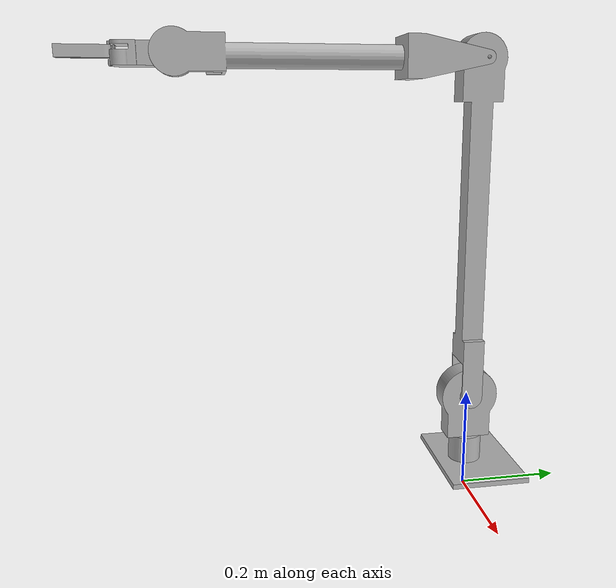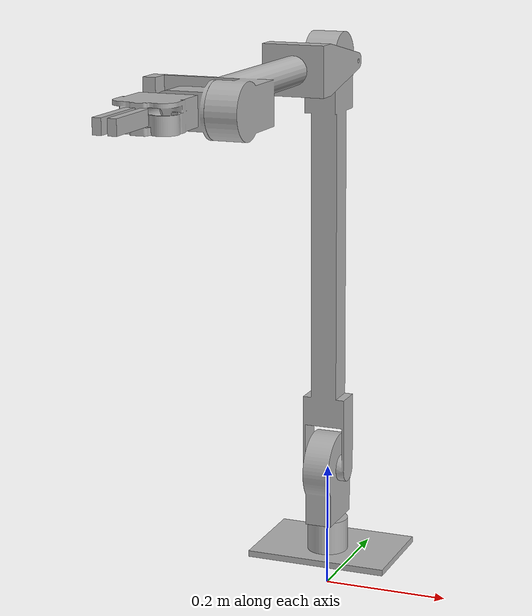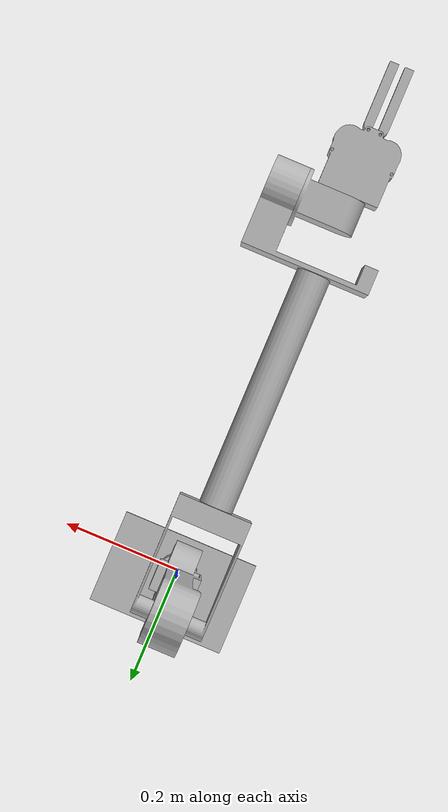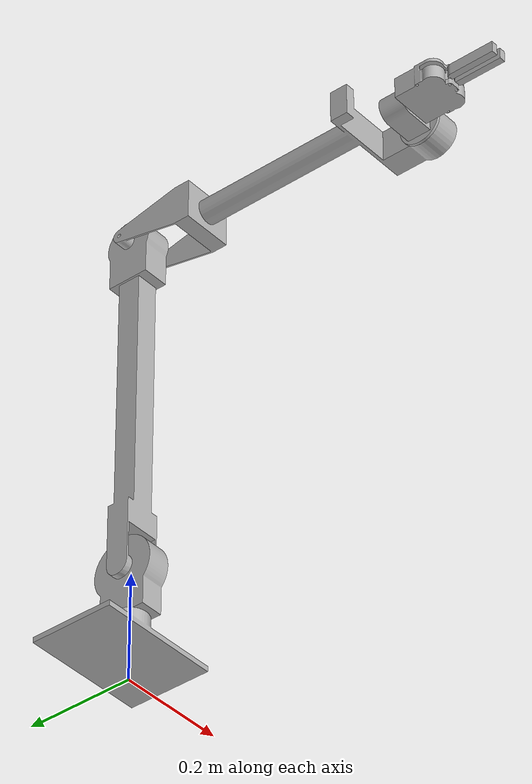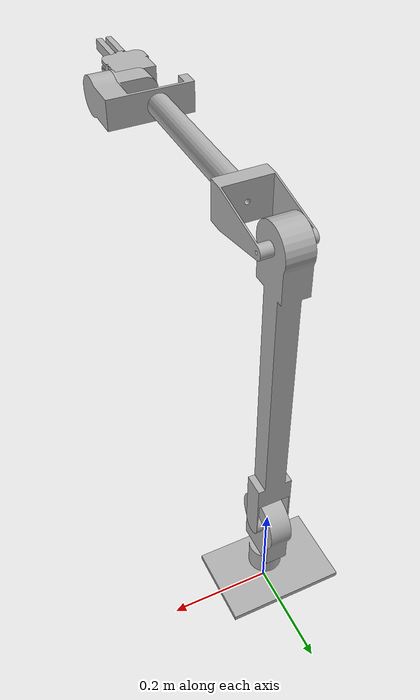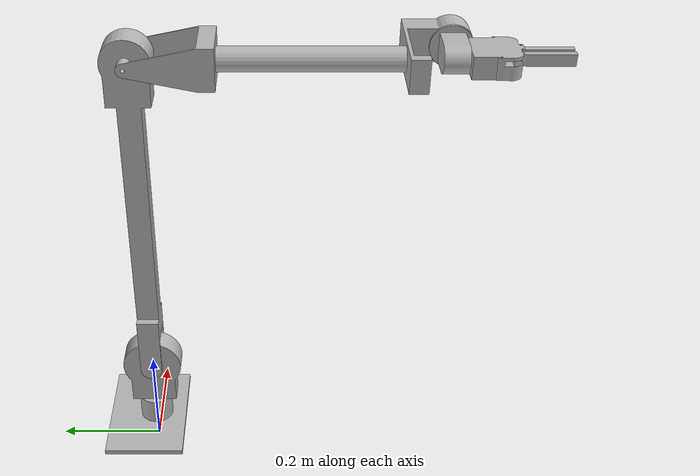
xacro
<?xml version="1.0" ?>
<robot name="assembly" xmlns:xacro="http://www.ros.org/wiki/xacro">

<xacro:include filename="$(find arm_22_gazebo_pos)/urdf/materials.xacro" />
<xacro:include filename="$(find arm_22_gazebo_pos)/urdf/assembly.trans" />
<xacro:include filename="$(find arm_22_gazebo_pos)/urdf/assembly.gazebo" />

<link name="world"> </link>

<joint name="dummy_joint" type="fixed">
  <origin xyz="0 0 0.06" rpy="0 0 0"/>
  <parent link="world"/>
  <child link="base_link"/>
</joint>

<link name="base_link">
  <inertial>
    <origin rpy="0 0 0" xyz="2.111478230178841e-13 0.011682408428370204 0.005554773279956959"/>
    <mass value="4.192131083267752"/>
    <inertia ixx="0.007549" ixy="0.0" ixz="0.0" iyy="0.013998" iyz="0.000517" izz="0.018961"/>
  </inertial>
  <visual>
    <origin rpy="0 0 0" xyz="0 0 0"/>
    <geometry>
      <mesh filename="package://arm_22_gazebo_pos/meshes/base_link.stl" scale="0.001 0.001 0.001"/>
    </geometry>
    <material name="silver"/>
  </visual>
  <collision>
    <origin rpy="0 0 0" xyz="0 0 0"/>
    <geometry>
      <mesh filename="package://arm_22_gazebo_pos/meshes/base_link.stl" scale="0.001 0.001 0.001"/>
    </geometry>
  </collision>
</link>

<link name="1_2_link_1">
  <inertial>
    <origin rpy="0 0 0" xyz="-4.440892098500626e-18 1.4354722485038024e-15 0.07105772806777622"/>
    <mass value="4.533031384288756"/>
    <inertia ixx="0.01043" ixy="-0.0" ixz="-0.0" iyy="0.007523" iyz="0.0" izz="0.004306"/>
  </inertial>
  <visual>
    <origin rpy="0 0 0" xyz="-0.0 -0.0 -0.0535"/>
    <geometry>
      <mesh filename="package://arm_22_gazebo_pos/meshes/1_2_link_1.stl" scale="0.001 0.001 0.001"/>
    </geometry>
    <material name="silver"/>
  </visual>
  <collision>
    <origin rpy="0 0 0" xyz="-0.0 -0.0 -0.0535"/>
    <geometry>
      <mesh filename="package://arm_22_gazebo_pos/meshes/1_2_link_1.stl" scale="0.001 0.001 0.001"/>
    </geometry>
  </collision>
</link>

<link name="2_3_link_1">
  <inertial>
    <origin rpy="0 0 0" xyz="-0.021499999999999762 1.9407189213085804e-17 0.40425517026841495"/>
    <mass value="11.422793723409663"/>
    <inertia ixx="0.493811" ixy="-0.0" ixz="-0.0" iyy="0.49327" iyz="-0.0" izz="0.005454"/>
  </inertial>
  <visual>
    <origin rpy="0 0 0" xyz="-0.0215 -0.0 -0.141"/>
    <geometry>
      <mesh filename="package://arm_22_gazebo_pos/meshes/2_3_link_1.stl" scale="0.001 0.001 0.001"/>
    </geometry>
    <material name="silver"/>
  </visual>
  <collision>
    <origin rpy="0 0 0" xyz="-0.0215 -0.0 -0.141"/>
    <geometry>
      <mesh filename="package://arm_22_gazebo_pos/meshes/2_3_link_1.stl" scale="0.001 0.001 0.001"/>
    </geometry>
  </collision>
</link>

<link name="3_4_link_1">
  <inertial>
    <origin rpy="0 0 0" xyz="0.025000000000004786 -0.11600699772151865 1.1102230246251565e-16"/>
    <mass value="2.1095820437502777"/>
    <inertia ixx="0.004579" ixy="0.0" ixz="0.0" iyy="0.003013" iyz="0.0" izz="0.005799"/>
  </inertial>
  <visual>
    <origin rpy="0 0 0" xyz="0.025 -0.0 -0.7965"/>
    <geometry>
      <mesh filename="package://arm_22_gazebo_pos/meshes/3_4_link_1.stl" scale="0.001 0.001 0.001"/>
    </geometry>
    <material name="silver"/>
  </visual>
  <collision>
    <origin rpy="0 0 0" xyz="0.025 -0.0 -0.7965"/>
    <geometry>
      <mesh filename="package://arm_22_gazebo_pos/meshes/3_4_link_1.stl" scale="0.001 0.001 0.001"/>
    </geometry>
  </collision>
</link>

<link name="4_5_link_1">
  <inertial>
    <origin rpy="0 0 0" xyz="0.02631095454187837 -0.25285048089107715 1.1102230246251565e-16"/>
    <mass value="6.936333570954899"/>
    <inertia ixx="0.111412" ixy="0.023035" ixz="0.0" iyy="0.014343" iyz="0.0" izz="0.122701"/>
  </inertial>
  <visual>
    <origin rpy="0 0 0" xyz="-0.0 0.14925 -0.7965"/>
    <geometry>
      <mesh filename="package://arm_22_gazebo_pos/meshes/4_5_link_1.stl" scale="0.001 0.001 0.001"/>
    </geometry>
    <material name="silver"/>
  </visual>
  <collision>
    <origin rpy="0 0 0" xyz="-0.0 0.14925 -0.7965"/>
    <geometry>
      <mesh filename="package://arm_22_gazebo_pos/meshes/4_5_link_1.stl" scale="0.001 0.001 0.001"/>
    </geometry>
  </collision>
</link>

<link name="5_6_link_1">
  <inertial>
    <origin rpy="0 0 0" xyz="-0.03519954944823235 0.0 1.1102230246251565e-16"/>
    <mass value="1.380651703874357"/>
    <inertia ixx="0.000555" ixy="0.0" ixz="0.0" iyy="0.00102" iyz="0.0" izz="0.000981"/>
  </inertial>
  <visual>
    <origin rpy="0 0 0" xyz="-0.055 0.54725 -0.7965"/>
    <geometry>
      <mesh filename="package://arm_22_gazebo_pos/meshes/5_6_link_1.stl" scale="0.001 0.001 0.001"/>
    </geometry>
    <material name="silver"/>
  </visual>
  <collision>
    <origin rpy="0 0 0" xyz="-0.055 0.54725 -0.7965"/>
    <geometry>
      <mesh filename="package://arm_22_gazebo_pos/meshes/5_6_link_1.stl" scale="0.001 0.001 0.001"/>
    </geometry>
  </collision>
</link>

<link name="gripper_link_1">
  <inertial>
    <origin rpy="0 0 0" xyz="-1.9022434799199985e-14 -0.03416319786748656 0.0010518735260454104"/>
    <mass value="0.17794522906388674"/>
    <inertia ixx="0.000124" ixy="-0.0" ixz="0.0" iyy="0.000145" iyz="-1e-06" izz="0.000206"/>
  </inertial>
  <visual>
    <origin rpy="0 0 0" xyz="-0.0 0.56925 -0.7965"/>
    <geometry>
      <mesh filename="package://arm_22_gazebo_pos/meshes/gripper_link_1.stl" scale="0.001 0.001 0.001"/>
    </geometry>
    <material name="silver"/>
  </visual>
  <collision>
    <origin rpy="0 0 0" xyz="-0.0 0.56925 -0.7965"/>
    <geometry>
      <mesh filename="package://arm_22_gazebo_pos/meshes/gripper_link_1.stl" scale="0.001 0.001 0.001"/>
    </geometry>
  </collision>
</link>

<link name="parmak_1_link_1">
  <inertial>
    <origin rpy="0 0 0" xyz="-0.001967084910946904 -0.04536035309441244 -0.010499999999999954"/>
    <mass value="0.17651437470268025"/>
    <inertia ixx="0.000124" ixy="-0.0" ixz="0.0" iyy="9e-06" iyz="0.0" izz="0.00012"/>
  </inertial>
  <visual>
    <origin rpy="0 0 0" xyz="0.008 0.65425 -0.8115"/>
    <geometry>
      <mesh filename="package://arm_22_gazebo_pos/meshes/parmak_1_link_1.stl" scale="0.001 0.001 0.001"/>
    </geometry>
    <material name="silver"/>
  </visual>
  <collision>
    <origin rpy="0 0 0" xyz="0.008 0.65425 -0.8115"/>
    <geometry>
      <mesh filename="package://arm_22_gazebo_pos/meshes/parmak_1_link_1.stl" scale="0.001 0.001 0.001"/>
    </geometry>
  </collision>
</link>

<link name="parmak_2_link_1">
  <inertial>
    <origin rpy="0 0 0" xyz="0.0019670849109472976 -0.045360353094412664 -0.010499999999999954"/>
    <mass value="0.17651437470268025"/>
    <inertia ixx="0.000124" ixy="0.0" ixz="0.0" iyy="9e-06" iyz="0.0" izz="0.00012"/>
  </inertial>
  <visual>
    <origin rpy="0 0 0" xyz="-0.008 0.65425 -0.8115"/>
    <geometry>
      <mesh filename="package://arm_22_gazebo_pos/meshes/parmak_2_link_1.stl" scale="0.001 0.001 0.001"/>
    </geometry>
    <material name="silver"/>
  </visual>
  <collision>
    <origin rpy="0 0 0" xyz="-0.008 0.65425 -0.8115"/>
    <geometry>
      <mesh filename="package://arm_22_gazebo_pos/meshes/parmak_2_link_1.stl" scale="0.001 0.001 0.001"/>
    </geometry>
  </collision>
</link>

<joint name="axis_1" type="continuous">
  <origin rpy="0 0 0" xyz="0.0 0.0 0.0535"/>
  <parent link="base_link"/>
  <child link="1_2_link_1"/>
  <axis xyz="0.0 0.0 1.0"/>
</joint>

<joint name="axis_2" type="continuous">
  <origin rpy="0 0 0" xyz="0.0215 0.0 0.0875"/>
  <parent link="1_2_link_1"/>
  <child link="2_3_link_1"/>
  <axis xyz="-1.0 0.0 0.0"/>
</joint>

<joint name="axis_3" type="continuous">
  <origin rpy="0 0 0" xyz="-0.0465 0.0 0.6555"/>
  <parent link="2_3_link_1"/>
  <child link="3_4_link_1"/>
  <axis xyz="-1.0 0.0 0.0"/>
</joint>

<joint name="axis_4" type="continuous">
  <origin rpy="0 0 0" xyz="0.025 -0.14925 0.0"/>
  <parent link="3_4_link_1"/>
  <child link="4_5_link_1"/>
  <axis xyz="-0.0 1.0 -0.0"/>
</joint>

<joint name="axis_5" type="continuous">
  <origin rpy="0 0 0" xyz="0.055 -0.398 0.0"/>
  <parent link="4_5_link_1"/>
  <child link="5_6_link_1"/>
  <axis xyz="-1.0 0.0 0.0"/>
</joint>

<joint name="axis_6" type="continuous">
  <origin rpy="0 0 0" xyz="-0.055 -0.022 0.0"/>
  <parent link="5_6_link_1"/>
  <child link="gripper_link_1"/>
  <axis xyz="-0.0 -1.0 0.0"/>
</joint>

<joint name="axis_parmak_1" type="revolute">
  <origin rpy="0 0 0" xyz="-0.008 -0.085 0.015"/>
  <parent link="gripper_link_1"/>
  <child link="parmak_1_link_1"/>
  <axis xyz="0.0 0.0 1.0"/>
  <limit
  lower="-0.5"
  upper="0.05"
  effort="200"
  velocity="20" />
</joint>

<joint name="axis_parmak_2" type="revolute">
  <origin rpy="0 0 0" xyz="0.008 -0.085 0.015"/>
  <parent link="gripper_link_1"/>
  <child link="parmak_2_link_1"/>
  <axis xyz="0.0 0.0 1.0"/>
  <limit
  lower="-0.05"
  upper="0.5"
  effort="200"
  velocity="20" />
</joint>

</robot>

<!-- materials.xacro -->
<robot name="assembly" xmlns:xacro="http://www.ros.org/wiki/xacro" >

<material name="silver">
  <color rgba="0.700 0.700 0.700 1.000"/>
</material>

</robot>

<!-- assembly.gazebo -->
<robot name="assembly" xmlns:xacro="http://www.ros.org/wiki/xacro" >

<xacro:property name="body_color" value="Gazebo/Silver" />

<gazebo>
  <plugin filename="libgazebo_ros_control.so" name="control"/>
</gazebo>
<gazebo reference="base_link">
  <material>${body_color}</material>
  <mu1>0.2</mu1>
  <mu2>0.2</mu2>
  <selfCollide>true</selfCollide>
  <gravity>true</gravity>
</gazebo>

<gazebo reference="1_2_link_1">
  <material>${body_color}</material>
  <mu1>0.2</mu1>
  <mu2>0.2</mu2>
  <selfCollide>true</selfCollide>
</gazebo>

<gazebo reference="2_3_link_1">
  <material>${body_color}</material>
  <mu1>0.2</mu1>
  <mu2>0.2</mu2>
  <selfCollide>true</selfCollide>
</gazebo>

<gazebo reference="3_4_link_1">
  <material>${body_color}</material>
  <mu1>0.2</mu1>
  <mu2>0.2</mu2>
  <selfCollide>true</selfCollide>
</gazebo>

<gazebo reference="4_5_link_1">
  <material>${body_color}</material>
  <mu1>0.2</mu1>
  <mu2>0.2</mu2>
  <selfCollide>true</selfCollide>
</gazebo>

<gazebo reference="5_6_link_1">
  <material>${body_color}</material>
  <mu1>0.2</mu1>
  <mu2>0.2</mu2>
  <selfCollide>true</selfCollide>
</gazebo>

<gazebo reference="gripper_link_1">
  <material>${body_color}</material>
  <mu1>0.2</mu1>
  <mu2>0.2</mu2>
  <selfCollide>true</selfCollide>
</gazebo>

<gazebo reference="parmak_1_link_1">
  <material>${body_color}</material>
  <mu1>0.2</mu1>
  <mu2>0.2</mu2>
  <selfCollide>true</selfCollide>
</gazebo>

<gazebo reference="parmak_2_link_1">
  <material>${body_color}</material>
  <mu1>0.2</mu1>
  <mu2>0.2</mu2>
  <selfCollide>true</selfCollide>
</gazebo>

</robot>
